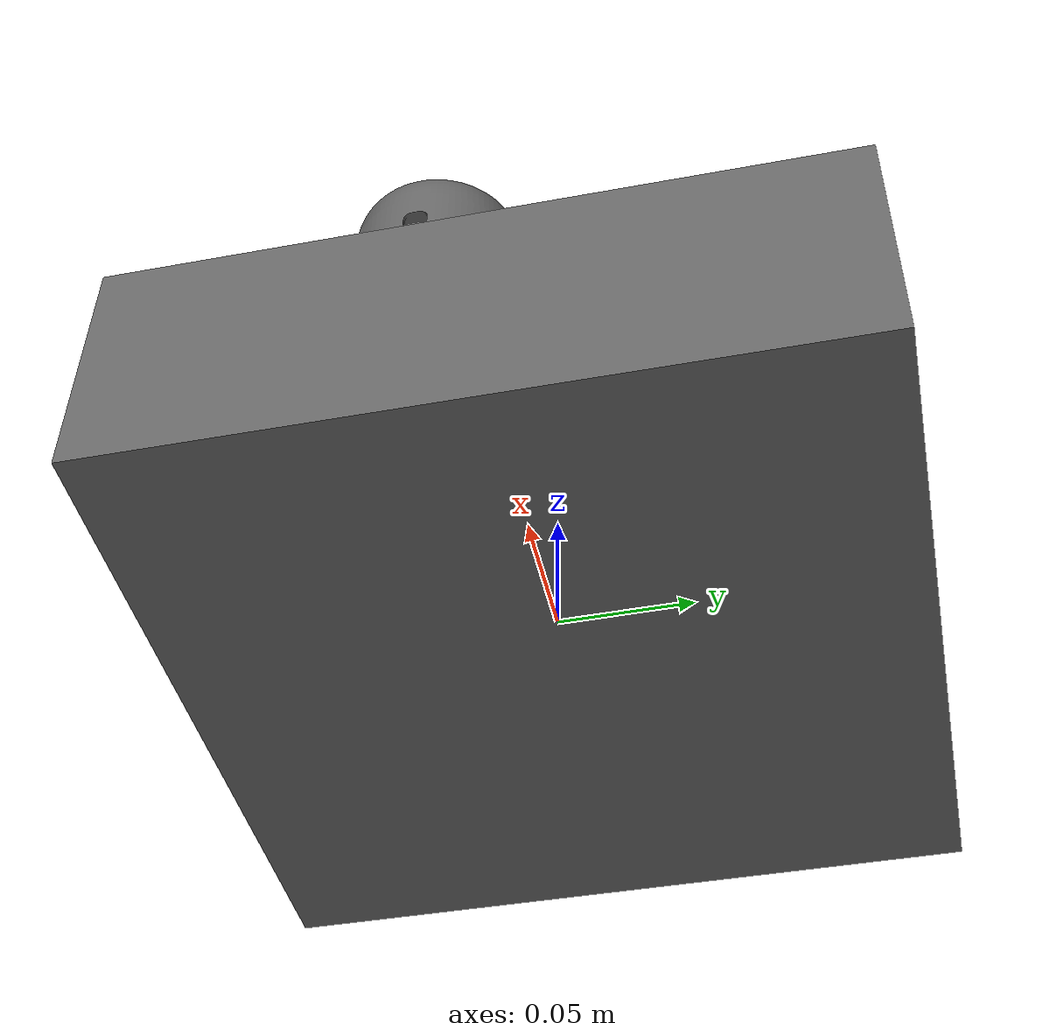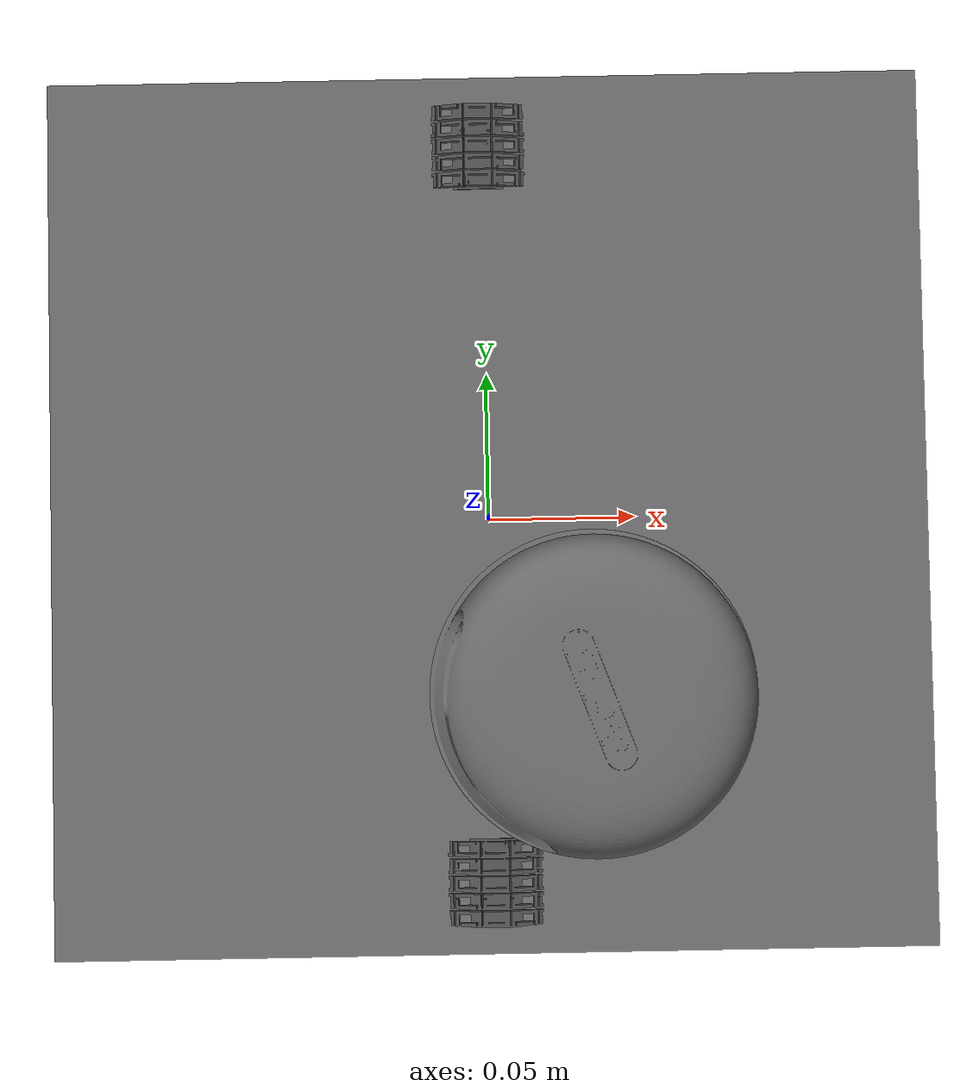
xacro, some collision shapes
<?xml version="1.0" ?>
<robot name="sauronbot" xmlns:xacro="http://ros.org/wiki/xacro">
	<xacro:include filename="$(find sauronbot_description)/urdf/common_properties.xacro"/>

	<xacro:property name="r200_cam_rgb_px" value="0.005"/>
  <xacro:property name="r200_cam_rgb_py" value="0.018"/>
  <xacro:property name="r200_cam_rgb_pz" value="0.013"/>
  <xacro:property name="r200_cam_depth_offset" value="0.01"/>

  <link name="base_footprint"/>

  <joint name="base_joint" type="fixed">
    <parent link="base_footprint"/>
    <child link="base_link" />
    <origin xyz="0 0 0.020" rpy="0 0 0"/>
  </joint>

  <link name="base_link">
    <visual>
      <origin xyz="0.247 -0.125 -0.01723" rpy="1.57 0 3.14"/>
      <geometry>
        <mesh filename="package://sauronbot_description/meshes/bases/sauronbot_base.stl" scale="0.001 0.001 0.001"/>
      </geometry>
      <material name="light_black"/>
    </visual>

    <collision>
      <origin xyz="0 0 0" rpy="0 0 0"/>
      <geometry>
        <box size="0.266 0.266 0.094"/>
      </geometry>
    </collision>

    <inertial>
      <origin xyz="0 0 0" rpy="0 0 0"/>
      <mass value="1.3729096e+00"/>
      <inertia ixx="8.7002718e-03" ixy="-4.7576583e-05" ixz="1.1160499e-04"
               iyy="8.6195418e-03" iyz="-3.5422299e-06"
               izz="1.4612727e-02" />
    </inertial>
  </link>

  <joint name="wheel_left_joint" type="continuous">
    <parent link="base_link"/>
    <child link="wheel_left_link"/>
    <origin xyz="0.0 0.11175 0.016" rpy="-1.57 0 0"/>
    <axis xyz="0 0 1"/>
  </joint>

  <link name="wheel_left_link">
    <visual>
      <origin xyz="-0.036 0 -0.01325" rpy="0 0 0"/>
      <geometry>
        <mesh filename="package://sauronbot_description/meshes/wheels/left_tire.stl" scale="0.001 0.001 0.001"/>
      </geometry>
      <material name="dark"/>
    </visual>

    <collision>
      <origin xyz="0 0 0" rpy="0 0 0"/>
      <geometry>
        <cylinder length="0.018" radius="0.033"/>
      </geometry>
    </collision>

    <inertial>
      <origin xyz="0 0 0" />
      <mass value="2.8498940e-02" />
      <inertia ixx="1.1175580e-05" ixy="-4.2369783e-11" ixz="-5.9381719e-09"
               iyy="1.1192413e-05" iyz="-1.4400107e-11"
               izz="2.0712558e-05" />
      </inertial>
  </link>

  <joint name="wheel_right_joint" type="continuous">
    <parent link="base_link"/>
    <child link="wheel_right_link"/>
    <origin xyz="0.0 -0.11175 0.016" rpy="-1.57 0 0"/>
    <axis xyz="0 0 1"/>
  </joint>

  <link name="wheel_right_link">
    <visual>
      <origin xyz="0 0 0" rpy="0 0 0"/>
      <geometry>
        <mesh filename="package://sauronbot_description/meshes/wheels/right_tire.stl" scale="0.001 0.001 0.001"/>
      </geometry>
      <material name="dark"/>
    </visual>

    <collision>
      <origin xyz="0 0 0" rpy="0 0 0"/>
      <geometry>
        <cylinder length="0.018" radius="0.033"/>
      </geometry>
    </collision>

    <inertial>
      <origin xyz="0 0 0" />
      <mass value="2.8498940e-02" />
      <inertia ixx="1.1175580e-05" ixy="-4.2369783e-11" ixz="-5.9381719e-09"
               iyy="1.1192413e-05" iyz="-1.4400107e-11"
               izz="2.0712558e-05" />
      </inertial>
  </link>

  <joint name="scan_joint" type="fixed">
    <parent link="base_link"/>
    <child link="base_scan"/>
    <origin xyz="0.023 0 0.2144" rpy="0 0 0"/>
  </joint>

  <link name="base_scan">
    <visual>
      <origin xyz="0 -0.047 -0.031" rpy="0 0 0"/>
      <geometry>
        <mesh filename="package://sauronbot_description/meshes/sensors/RPLIDAR_A3.stl" scale="0.001 0.001 0.001"/>
      </geometry>
      <material name="light_black"/>
    </visual>

    <collision>
      <origin xyz="0 0 0" rpy="0 0 0"/>
      <geometry>
        <cylinder length="0.0315" radius="0.038"/>
      </geometry>
    </collision>

    <inertial>
      <mass value="0.114" />
      <origin xyz="0 0 0" />
      <inertia ixx="0.001" ixy="0.0" ixz="0.0"
               iyy="0.001" iyz="0.0"
               izz="0.001" />
    </inertial>
  </link>

</robot>

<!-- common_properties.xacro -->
<robot name="xacro_properties" xmlns:xacro="http://ros.org/wiki/xacro">

  <!-- Init colour -->
  <material name="black">
      <color rgba="0.0 0.0 0.0 1.0"/>
  </material>

  <material name="dark">
    <color rgba="0.3 0.3 0.3 1.0"/>
  </material>
  <material name="light_black">
    <color rgba="0.4 0.4 0.4 1.0"/>
  </material>

  <material name="blue">
    <color rgba="0.0 0.0 0.8 1.0"/>
  </material>

  <material name="green">
    <color rgba="0.0 0.8 0.0 1.0"/>
  </material>

  <material name="grey">
    <color rgba="0.5 0.5 0.5 1.0"/>
  </material>

  <material name="orange">
    <color rgba="${255/255} ${108/255} ${10/255} 1.0"/>
  </material>

  <material name="brown">
    <color rgba="${222/255} ${207/255} ${195/255} 1.0"/>
  </material>

  <material name="red">
    <color rgba="0.8 0.0 0.0 1.0"/>
  </material>

  <material name="white">
    <color rgba="1.0 1.0 1.0 1.0"/>
  </material>

  <material name="RPICAMERA_V2_mat">
        <color rgba="0.25 0.25 0.25 0.99"/>
    </material>
</robot>
